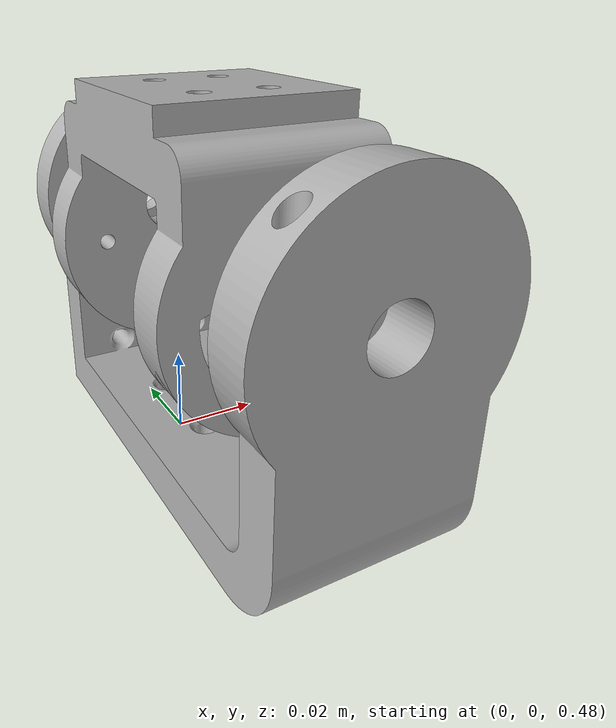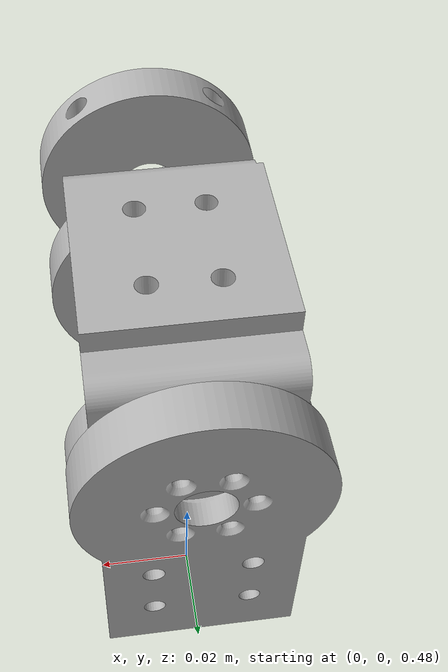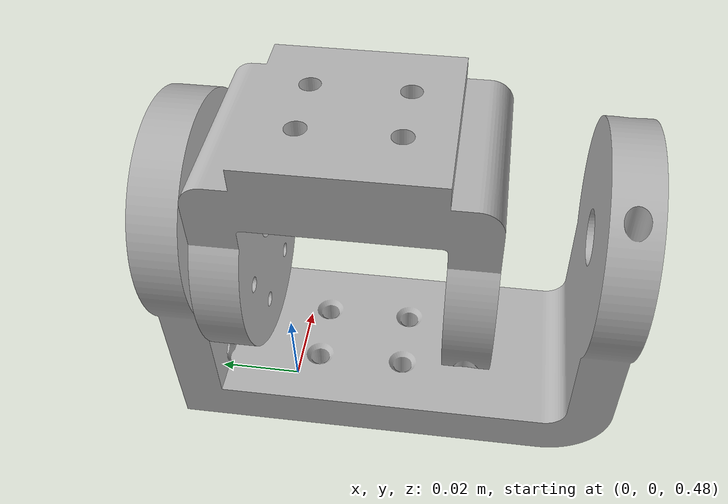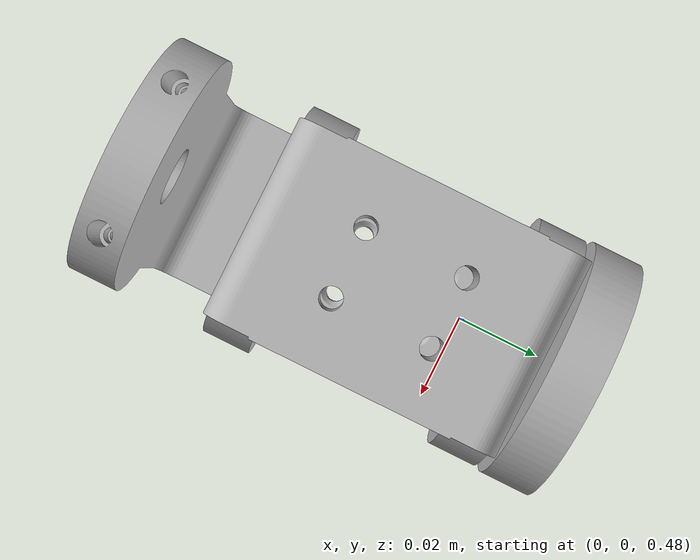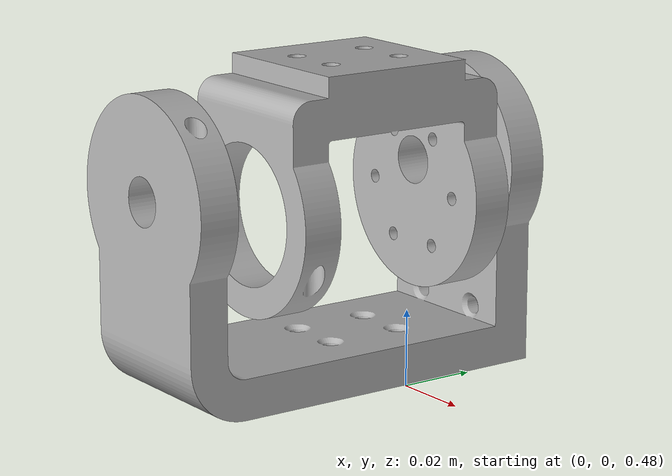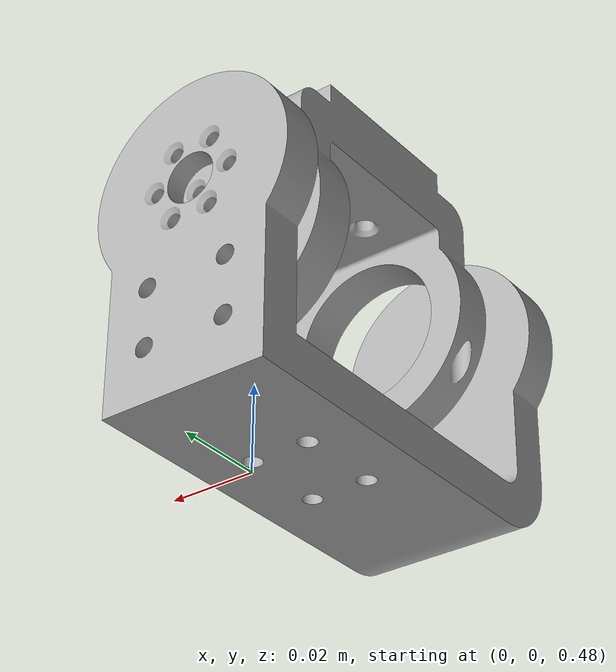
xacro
<?xml version="1.0" ?>
<robot name="test" xmlns:xacro="http://www.ros.org/wiki/xacro">

<xacro:include filename="$(find test_description)/urdf/materials.xacro" />
<xacro:include filename="$(find test_description)/urdf/test.trans" />
<xacro:include filename="$(find test_description)/urdf/test.gazebo" />
<link name="base_link">
  <inertial>
    <origin rpy="0 0 0" xyz="5.944433906032821e-12 -0.01658097344344095 0.5539526771230513"/>
    <mass value="0.11215555559606659"/>
    <inertia ixx="5.9e-05" ixy="-0.0" ixz="0.0" iyy="4.4e-05" iyz="5e-06" izz="4.9e-05"/>
  </inertial>
  <visual>
    <origin rpy="0 0 0" xyz="0 0 0"/>
    <geometry>
      <mesh filename="package://test_description/meshes/base_link.stl" scale="0.001 0.001 0.001"/>
    </geometry>
    <material name="silver_default"/>
  </visual>
  <collision>
    <origin rpy="0 0 0" xyz="0 0 0"/>
    <geometry>
      <mesh filename="package://test_description/meshes/base_link.stl" scale="0.001 0.001 0.001"/>
    </geometry>
  </collision>
</link>

<link name="link1_1">
  <inertial>
    <origin rpy="0 0 0" xyz="5.902271707762806e-12 0.4995329807936443 -0.0062514932097405"/>
    <mass value="0.09007107989785818"/>
    <inertia ixx="0.000176" ixy="0.0" ixz="0.0" iyy="5.9e-05" iyz="3e-06" izz="0.000145"/>
  </inertial>
  <visual>
    <origin rpy="0 0 0" xyz="-0.0 0.527 -0.52"/>
    <geometry>
      <mesh filename="package://test_description/meshes/link1_1.stl" scale="0.001 0.001 0.001"/>
    </geometry>
    <material name="silver_default"/>
  </visual>
  <collision>
    <origin rpy="0 0 0" xyz="-0.0 0.527 -0.52"/>
    <geometry>
      <mesh filename="package://test_description/meshes/link1_1.stl" scale="0.001 0.001 0.001"/>
    </geometry>
  </collision>
</link>

<joint name="Rev4" type="continuous">
  <origin rpy="0 0 0" xyz="0.0 -0.527 0.52"/>
  <parent link="base_link"/>
  <child link="link1_1"/>
  <axis xyz="-0.0 1.0 0.0"/>
</joint>

</robot>

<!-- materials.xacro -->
<robot name="test" xmlns:xacro="http://www.ros.org/wiki/xacro" >

<material name="silver_default">
  <color rgba="0.700 0.700 0.700 1.000"/>
</material>

</robot>

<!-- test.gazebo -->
<robot name="test" xmlns:xacro="http://www.ros.org/wiki/xacro" >

<xacro:property name="body_color" value="Gazebo/Silver" />

<gazebo>
  <plugin filename="libgazebo_ros_control.so" name="control"/>
</gazebo>
<gazebo reference="base_link">
  <material>${body_color}</material>
  <mu1>0.2</mu1>
  <mu2>0.2</mu2>
  <selfCollide>true</selfCollide>
  <gravity>true</gravity>
</gazebo>

<gazebo reference="link1_1">
  <material>${body_color}</material>
  <mu1>0.2</mu1>
  <mu2>0.2</mu2>
  <selfCollide>true</selfCollide>
</gazebo>

</robot>
